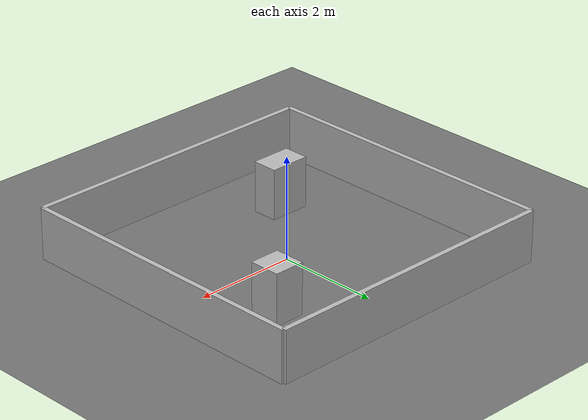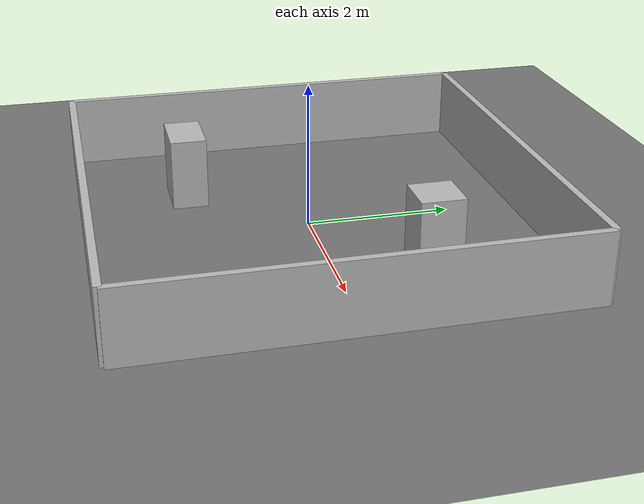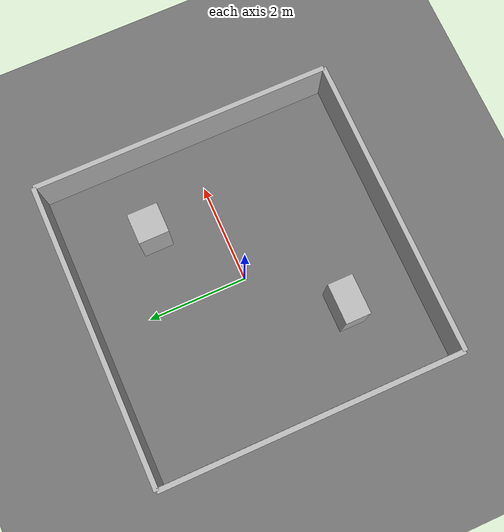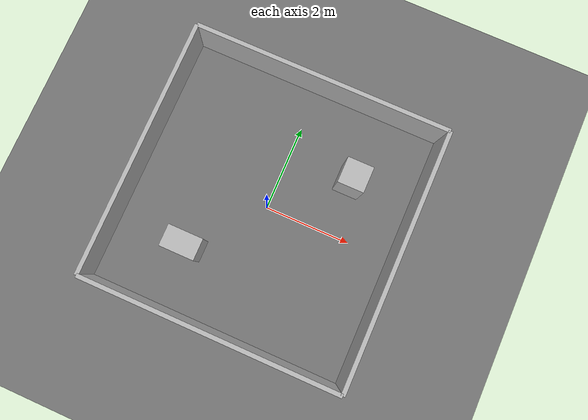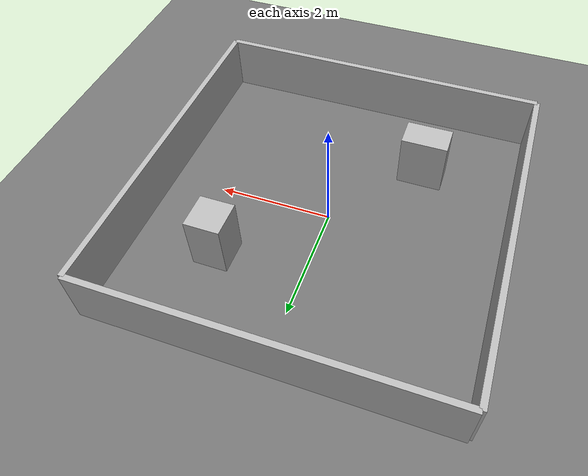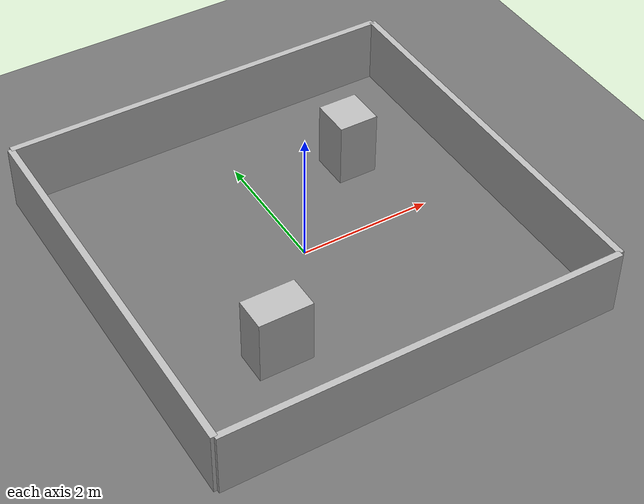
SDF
<?xml version="1.0" ?>

<sdf version="1.10">

  <world name="tugger_test">

    <physics name="physics" type="ignored">
      <max_step_size>0.001</max_step_size>
      <real_time_factor>1.0</real_time_factor>
    </physics>

    <plugin
      filename="gz-sim-physics-system"
      name="gz::sim::systems::Physics"/>

    <plugin
      filename="gz-sim-user-commands-system"
      name="gz::sim::systems::UserCommands"/>

    <plugin
      filename="gz-sim-scene-broadcaster-system"
      name="gz::sim::systems::SceneBroadcaster"/>

    <plugin
      filename="gz-sim-sensors-system"
      name="gz::sim::systems::Sensors">
      <render_engine>ogre2</render_engine>
    </plugin>

    <plugin
      filename="gz-sim-imu-system"
      name="gz::sim::systems::Imu"/>

    <light type="directional" name="sun">
      <cast_shadows>true</cast_shadows>
      <pose>0 0 10 0 0 0</pose>
      <diffuse>0.8 0.8 0.8 1</diffuse>
      <specular>0.2 0.2 0.2 1</specular>
      <direction>-0.5 0.1 -0.9</direction>
    </light>

    <model name="ground_plane">
      <static>true</static>

      <link name="link">

        <collision name="collision">
          <geometry>
            <plane>
              <normal>0 0 1</normal>
              <size>100 100</size>
            </plane>
          </geometry>
        </collision>

        <visual name="visual">
          <geometry>
            <plane>
              <normal>0 0 1</normal>
              <size>100 100</size>
            </plane>
          </geometry>

          <material>
            <ambient>0.35 0.35 0.35 1</ambient>
            <diffuse>0.45 0.45 0.45 1</diffuse>
            <specular>0.10 0.10 0.10 1</specular>
          </material>

        </visual>

      </link>
    </model>

    <!-- North wall -->
    <model name="nav_test_wall_north">
      <static>true</static>
      <pose>0 3.0 0.5 0 0 0</pose>
      <link name="link">
        <collision name="collision">
          <geometry>
            <box><size>6.0 0.10 1.0</size></box>
          </geometry>
        </collision>
        <visual name="visual">
          <geometry>
            <box><size>6.0 0.10 1.0</size></box>
          </geometry>
        </visual>
      </link>
    </model>

    <!-- South wall -->
    <model name="nav_test_wall_south">
      <static>true</static>
      <pose>0 -3.0 0.5 0 0 0</pose>
      <link name="link">
        <collision name="collision">
          <geometry>
            <box><size>6.0 0.10 1.0</size></box>
          </geometry>
        </collision>
        <visual name="visual">
          <geometry>
            <box><size>6.0 0.10 1.0</size></box>
          </geometry>
        </visual>
      </link>
    </model>

    <!-- East wall -->
    <model name="nav_test_wall_east">
      <static>true</static>
      <pose>3.0 0 0.5 0 0 0</pose>
      <link name="link">
        <collision name="collision">
          <geometry>
            <box><size>0.10 6.0 1.0</size></box>
          </geometry>
        </collision>
        <visual name="visual">
          <geometry>
            <box><size>0.10 6.0 1.0</size></box>
          </geometry>
        </visual>
      </link>
    </model>

    <!-- West wall -->
    <model name="nav_test_wall_west">
      <static>true</static>
      <pose>-3.0 0 0.5 0 0 0</pose>
      <link name="link">
        <collision name="collision">
          <geometry>
            <box><size>0.10 6.0 1.0</size></box>
          </geometry>
        </collision>
        <visual name="visual">
          <geometry>
            <box><size>0.10 6.0 1.0</size></box>
          </geometry>
        </visual>
      </link>
    </model>

    <!-- Internal obstacle 1 -->
    <model name="nav_test_obstacle_1">
      <static>true</static>
      <pose>1.5 1.3 0.5 0 0 0</pose>
      <link name="link">
        <collision name="collision">
          <geometry>
            <box><size>0.6 0.6 1.0</size></box>
          </geometry>
        </collision>
        <visual name="visual">
          <geometry>
            <box><size>0.6 0.6 1.0</size></box>
          </geometry>
        </visual>
      </link>
    </model>

    <!-- Internal obstacle 2 -->
    <model name="nav_test_obstacle_2">
      <static>true</static>
      <pose>-1.3 -1.5 0.5 0 0 0</pose>
      <link name="link">
        <collision name="collision">
          <geometry>
            <box><size>0.8 0.5 1.0</size></box>
          </geometry>
        </collision>
        <visual name="visual">
          <geometry>
            <box><size>0.8 0.5 1.0</size></box>
          </geometry>
        </visual>
      </link>
    </model>

  </world>

</sdf>
